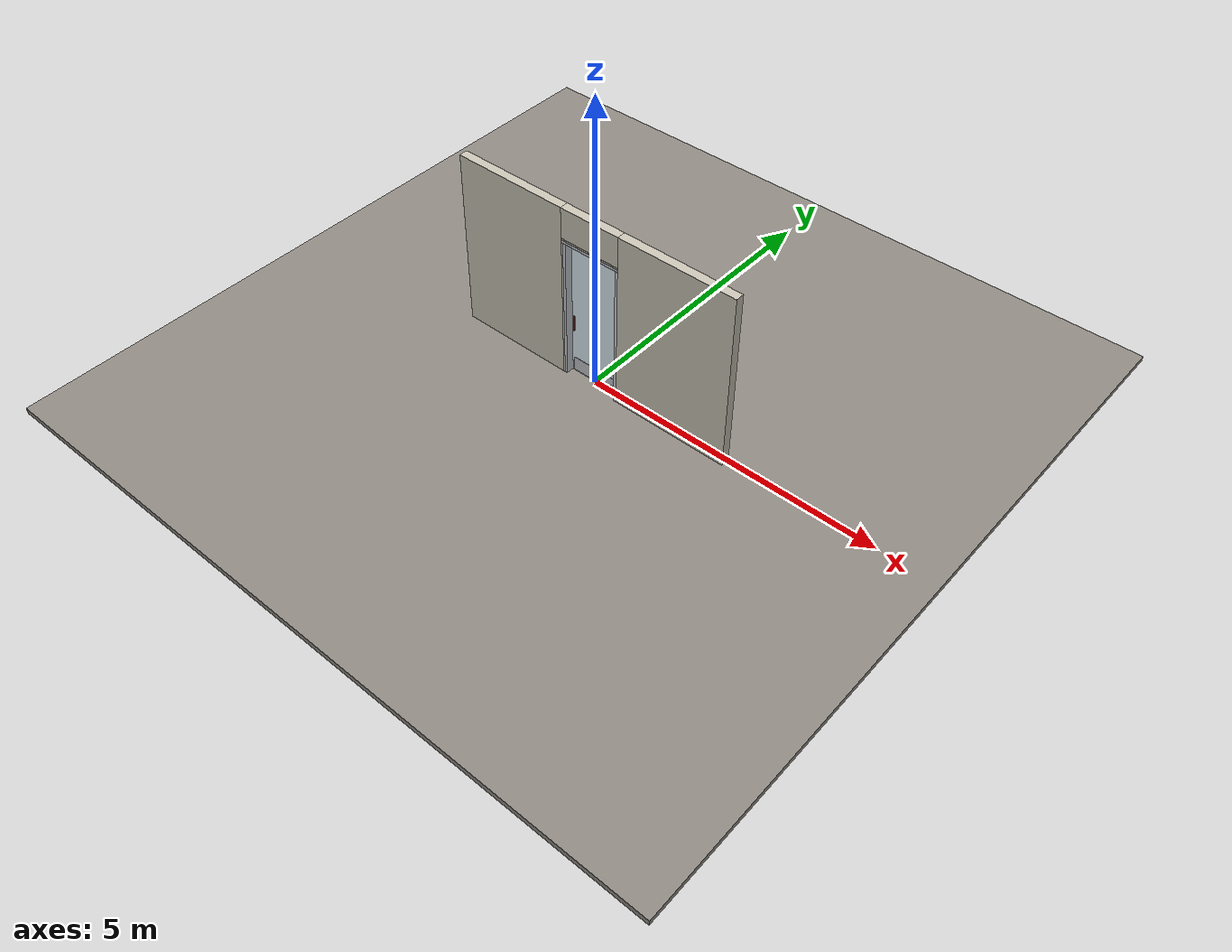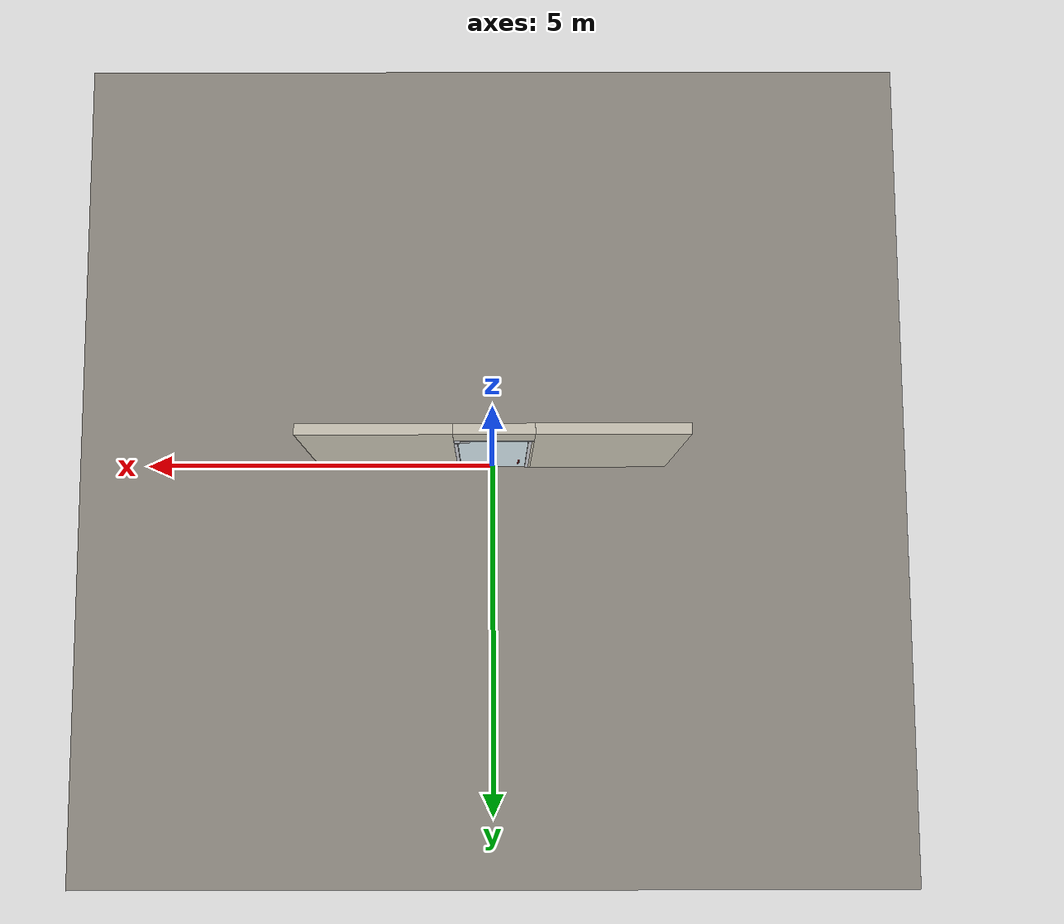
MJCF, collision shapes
<?xml version="1.0" ?>
<mujoco model="db0470_swing_single_simple">
  <compiler angle="radian" meshdir="../../hardware" texturedir="../../textures" autolimits="true" inertiafromgeom="false"/>
  <option timestep="0.002" integrator="implicitfast" cone="elliptic" impratio="10" noslip_iterations="3">
    <flag multiccd="enable"/>
  </option>
  <size memory="16M"/>
  <default>
    <geom condim="4" solref="0.005 1" solimp="0.95 0.99 0.001"/>
    <joint solreflimit="0.005 1" solimplimit="0.95 0.99 0.001"/>
    <tendon solreflimit="0.005 1"/>
    <equality solref="0.002 1"/>
  </default>
  <visual>
    <headlight ambient="0.4 0.4 0.4" diffuse="0.7 0.7 0.7" specular="0.2 0.2 0.2"/>
    <quality shadowsize="4096"/>
    <map znear="0.01" zfar="60"/>
  </visual>
  <asset>
    <mesh name="pull_f8d79d6331" file="pull_f8d79d6331.obj"/>
    <material name="mat_floor" rgba="0.55 0.53 0.5 1" specular="0.2" shininess="0.15" reflectance="0"/>
    <material name="mat_wall" rgba="0.78 0.76 0.7 1" specular="0.2" shininess="0.1" reflectance="0"/>
    <material name="mat_leaf" rgba="0.85 0.92 0.95 0.25" specular="0.2" shininess="0.95" reflectance="0.1"/>
    <material name="mat_glass_leaf" rgba="0.85 0.92 0.95 0.25" specular="0.2" shininess="0.95" reflectance="0.1"/>
    <material name="mat_patch" rgba="0.75 0.76 0.77 1" specular="0.8" shininess="0.65" reflectance="0.4"/>
    <material name="mat_hinge" rgba="0.65 0.66 0.68 1" specular="0.74" shininess="0.5" reflectance="0.36"/>
    <material name="mat_op_stainless" rgba="0.75 0.76 0.77 1" specular="0.8" shininess="0.65" reflectance="0.4"/>
    <material name="mat_frame" rgba="0.8 0.81 0.83 1" specular="0.8" shininess="0.6" reflectance="0.4"/>
    <material name="mat_closer" rgba="0.22 0.17 0.13 1" specular="0.8" shininess="0.6" reflectance="0.4"/>
    <material name="mat_kick" rgba="0.75 0.76 0.77 1" specular="0.8" shininess="0.65" reflectance="0.4"/>
    <texture name="skybox" type="skybox" builtin="gradient" rgb1="0.6 0.7 0.85" rgb2="0.9 0.92 0.95" width="256" height="256"/>
  </asset>
  <worldbody>
    <light name="sun" pos="1.5 -2.5 4" dir="-0.3 0.5 -0.8" directional="true" diffuse="0.8 0.8 0.8" specular="0.3 0.3 0.3" castshadow="true"/>
    <light name="fill" pos="-1.5 2.5 3" dir="0.3 -0.5 -0.7" directional="true" diffuse="0.35 0.35 0.4" castshadow="false"/>
    <camera name="robot_view" pos="0 -2.983312 2.043887" xyaxes="1 0 0 0 0.26963 0.962964" fovy="52"/>
    <camera name="far_view" pos="0 2.862313 2.043887" xyaxes="-1 0 0 0 -0.26963 0.962964" fovy="52"/>
    <camera name="iso" pos="-2.221337 -2.515662 2.511538" xyaxes="0.741536 -0.670913 0 0.242917 0.268487 0.932151" fovy="46"/>
    <camera name="detail_handle" pos="-0.1735 -0.88 1.296" xyaxes="0.97561 0.219512 0 -0.070934 0.315262 0.94635" fovy="38"/>
    <geom name="floor" type="box" size="6 6 0.05" pos="0 0 -0.05" material="mat_floor" group="0" contype="1" conaffinity="1" friction="0.8 0.005 0.0001" density="2400"/>
    <geom name="wall_left" type="box" size="0.98175 0.0725 1.5255" pos="-1.51825 -0.0605 1.5255" material="mat_wall" group="0" contype="1" conaffinity="1" friction="0.6 0.005 0.0001" density="800"/>
    <geom name="wall_right" type="box" size="0.99675 0.0725 1.5255" pos="1.50325 -0.0605 1.5255" material="mat_wall" group="0" contype="1" conaffinity="1" friction="0.6 0.005 0.0001" density="800"/>
    <geom name="wall_header" type="box" size="0.5215 0.0725 0.2625" pos="-0.015 -0.0605 2.7885" material="mat_wall" group="0" contype="1" conaffinity="1" friction="0.6 0.005 0.0001" density="800"/>
    <geom name="pivot_bottom_socket" type="box" size="0.035 0.035 0.0085" pos="0.4585 0.012 -0.0015" material="mat_hinge" group="1" contype="0" conaffinity="0" density="7850"/>
    <geom name="pivot_top_bracket" type="box" size="0.035 0.035 0.0355" pos="0.4585 0.012 2.4905" material="mat_hinge" group="1" contype="0" conaffinity="0" density="7850"/>
    <geom name="jamb_hinge" type="box" size="0.0225 0.0725 1.2255" pos="0.484 -0.0605 1.2255" material="mat_frame" group="0" contype="1" conaffinity="1" friction="0.6 0.005 0.0001" density="300"/>
    <geom name="jamb_strike" type="box" size="0.0225 0.0725 1.2255" pos="-0.484 -0.0605 1.2255" material="mat_frame" group="0" contype="1" conaffinity="1" friction="0.6 0.005 0.0001" density="300"/>
    <geom name="stud_strike" type="box" size="0.015 0.0725 1.2255" pos="-0.5215 -0.0605 1.2255" material="mat_wall" group="0" contype="1" conaffinity="1" friction="0.6 0.005 0.0001" density="500"/>
    <geom name="jamb_head" type="box" size="0.5215 0.0725 0.0225" pos="-0.015 -0.0605 2.4735" material="mat_frame" group="0" contype="1" conaffinity="1" friction="0.6 0.005 0.0001" density="300"/>
    <geom name="head_stud" type="box" size="0.5215 0.0725 0.015" pos="-0.015 -0.0605 2.511" material="mat_wall" group="0" contype="1" conaffinity="1" friction="0.6 0.005 0.0001" density="500"/>
    <site name="approach_point" pos="0 -1.5 0" quat="1 0 0 0" size="0.05" rgba="0.2 0.9 0.2 0.5" group="4"/>
    <site name="goal_point" pos="0 1.5 0" quat="1 0 0 0" size="0.05" rgba="0.2 0.9 0.2 0.5" group="4"/>
    <site name="door_plane_center" pos="0 0 1.2255" quat="1 0 0 0" size="0.02" rgba="0.2 0.9 0.2 0.5" group="4"/>
    <body name="leaf" pos="0.4615 0 0">
      <inertial pos="-0.568482 -0.001998 0.790989" mass="70.892877" quat="0.517543 0.516905 0.48091 -0.483408" diaginertia="5.084079276 29.143633097 33.995055709"/>
      <joint name="leaf_hinge" type="hinge" axis="0 0 -1" pos="-0.003 0.012 0" limited="true" range="0 1.745329" solreflimit="0.02 1" damping="10.307281" frictionloss="1.363287" stiffness="15.342537" springref="-1.864099" armature="0.02"/>
      <geom name="leaf_glass" type="box" size="0.457 0.005 1.219" pos="-0.463 0 1.228" material="mat_glass_leaf" group="0" contype="1" conaffinity="1" friction="0.4 0.005 0.0001" density="1"/>
      <geom name="leaf_patch_bot" type="box" size="0.08 0.013 0.05" pos="-0.086 0 0.069" material="mat_patch" group="1" contype="0" conaffinity="0" density="1"/>
      <geom name="leaf_patch_top" type="box" size="0.08 0.013 0.05" pos="-0.086 0 2.387" material="mat_patch" group="1" contype="0" conaffinity="0" density="1"/>
      <geom name="leaf_pull_n" type="mesh" mesh="pull_f8d79d6331" pos="-0.815 -0.005 1.016" quat="0 0 -0.707107 0.707107" material="mat_op_stainless" group="1" contype="0" conaffinity="0" density="3000"/>
      <geom name="leaf_pull_col_n" type="capsule" size="0.0125 0.13" pos="-0.815 -0.08 1.016" material="mat_op_stainless" group="3" contype="1" conaffinity="1" rgba="0.8 0.3 0.3 0.25" friction="0.7 0.01 0.0001" density="3000"/>
      <geom name="leaf_pull_p" type="mesh" mesh="pull_f8d79d6331" pos="-0.815 0.005 1.016" quat="0 0 0.707107 0.707107" material="mat_op_stainless" group="1" contype="0" conaffinity="0" density="3000"/>
      <geom name="leaf_pull_col_p" type="capsule" size="0.0125 0.13" pos="-0.815 0.08 1.016" material="mat_op_stainless" group="3" contype="1" conaffinity="1" rgba="0.8 0.3 0.3 0.25" friction="0.7 0.01 0.0001" density="3000"/>
      <geom name="kick_plate_n" type="box" size="0.427 0.0008 0.125" pos="-0.463 -0.0058 0.144" material="mat_kick" group="2" contype="0" conaffinity="0" density="7900"/>
      <site name="leaf_pull_grip_n" pos="-0.815 -0.08 1.016" quat="1 0 0 0" size="0.012" rgba="0.2 0.9 0.2 0.5" group="4"/>
      <site name="leaf_pull_grip_p" pos="-0.815 0.08 1.016" quat="1 0 0 0" size="0.012" rgba="0.2 0.9 0.2 0.5" group="4"/>
      <site name="leaf_edge_mid" pos="-0.92 0 1.219" quat="1 0 0 0" size="0.02" rgba="0.2 0.9 0.2 0.5" group="4"/>
    </body>
  </worldbody>
  <sensor>
    <jointpos name="leaf_hinge_pos" joint="leaf_hinge"/>
    <jointvel name="leaf_hinge_vel" joint="leaf_hinge"/>
  </sensor>
</mujoco>
